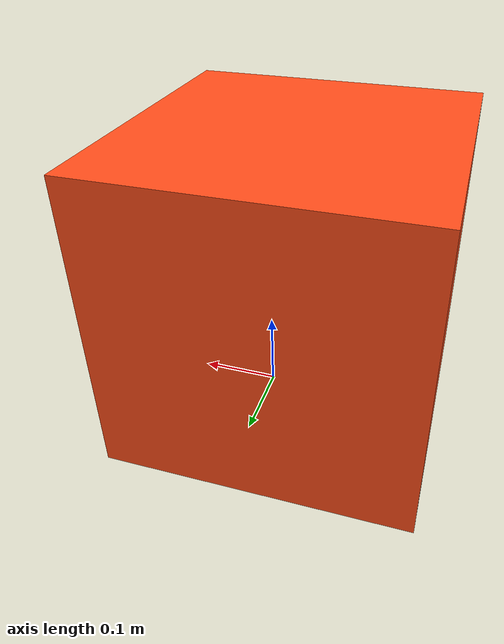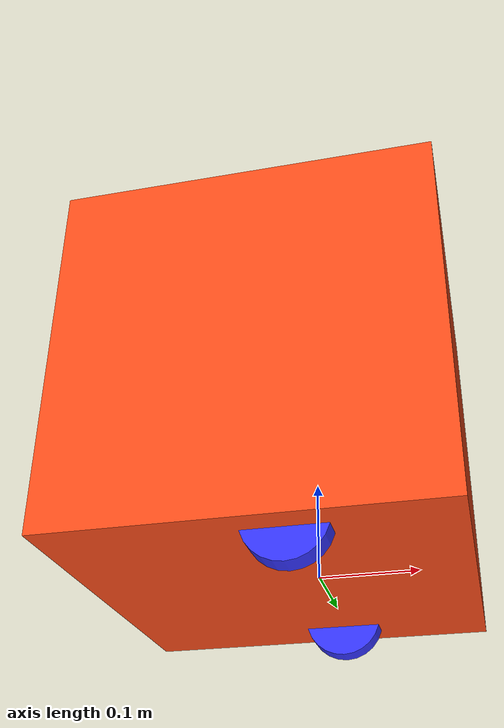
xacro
<?xml version="1.0"?>
<robot xmlns:xacro="http://www.ros.org/wiki/xacro"  name="robot">

    <xacro:arg name="use_ros2_control" default="true"/>
    <xacro:arg name="sim_mode" default="false"/>

    <xacro:include filename="robot_core.xacro" />

    <xacro:if value="$(arg use_ros2_control)">
        <xacro:include filename="ros2_control.xacro" />
    </xacro:if>

</robot>

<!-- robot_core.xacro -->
<robot xmlns:xacro="http://www.ros.org/wiki/xacro" >

    <xacro:include filename="inertial_macros.xacro"/>

    <xacro:property name="chassis_length" value="0.381"/>
    <xacro:property name="chassis_width" value="0.381"/>
    <xacro:property name="chassis_height" value="0.381"/>
    <xacro:property name="chassis_mass" value="1.0"/>
    <xacro:property name="wheel_radius" value="0.041"/>
    <xacro:property name="wheel_thickness" value="0.025"/>
    <xacro:property name="wheel_mass" value="0.06"/>
    <xacro:property name="wheel_offset_x" value="0.226"/>
    <xacro:property name="wheel_offset_y" value="0.1485"/>
    <xacro:property name="wheel_offset_z" value="0.01"/>

    <material name="white">
        <color rgba="1 1 1 1" />
    </material>

    <material name="orange">
        <color rgba="1 0.3 0.1 1"/>
    </material>

    <material name="blue">
        <color rgba="0.2 0.2 1 1"/>
    </material>

    <material name="black">
        <color rgba="0 0 0 1"/>
    </material>

    <material name="red">
        <color rgba="1 0 0 1"/>
    </material>

    <!-- BASE LINK -->

    <link name="base_link">

    </link>

    <!-- CHASSIS LINK -->

    <joint name="chassis_joint" type="fixed">
        <parent link="base_link"/>
        <child link="chassis"/>
        <origin xyz="${-wheel_offset_x} 0 ${-wheel_offset_z}"/>
    </joint>

    <link name="chassis">
        <visual>
            <origin xyz="${chassis_length/2} 0 ${chassis_height/2}"/>
            <geometry>
                <box size="${chassis_length} ${chassis_width} ${chassis_height}"/>
            </geometry>
            <material name="orange"/>
        </visual>
        <collision>
            <origin xyz="${chassis_length/2} 0 ${chassis_height/2}"/>
            <geometry>
                <box size="${chassis_length} ${chassis_width} ${chassis_height}"/>
            </geometry>
        </collision>
        <xacro:inertial_box mass="0.5" x="${chassis_length}" y="${chassis_width}" z="${chassis_height}">
            <origin xyz="${chassis_length/2} 0 ${chassis_height/2}" rpy="0 0 0"/>
        </xacro:inertial_box>
    </link>

    <!-- LEFT WHEEL LINK -->

    <joint name="left_wheel_joint" type="continuous">
        <parent link="base_link"/>
        <child link="left_wheel"/>
        <origin xyz="0 ${wheel_offset_y} 0" rpy="-${pi/2} 0 0" />
        <axis xyz="0 0 1"/>
    </joint>

    <link name="left_wheel">
        <visual>
            <geometry>
                <cylinder radius="${wheel_radius}" length="${wheel_thickness}"/>
            </geometry>
            <material name="blue"/>
        </visual>
        <collision>
            <geometry>
                <sphere radius="${wheel_radius}"/>
            </geometry>
        </collision>
        <xacro:inertial_cylinder mass="${wheel_mass}" length="${wheel_thickness}" radius="${wheel_radius}">
            <origin xyz="0 0 0" rpy="0 0 0"/>
        </xacro:inertial_cylinder>
    </link>

    <!-- RIGHT WHEEL LINK -->

    <joint name="right_wheel_joint" type="continuous">
        <parent link="base_link"/>
        <child link="right_wheel"/>
        <origin xyz="0 ${-wheel_offset_y} 0" rpy="${pi/2} 0 0" />
        <axis xyz="0 0 -1"/>
    </joint>

    <link name="right_wheel">
        <visual>
            <geometry>
                <cylinder radius="${wheel_radius}" length="${wheel_thickness}"/>
            </geometry>
            <material name="blue"/>
        </visual>
        <collision>
            <geometry>
                <sphere radius="${wheel_radius}"/>
            </geometry>
        </collision>
        <xacro:inertial_cylinder mass="${wheel_mass}" length="${wheel_thickness}" radius="${wheel_radius}">
            <origin xyz="0 0 0" rpy="0 0 0"/>
        </xacro:inertial_cylinder>
    </link>

</robot>
